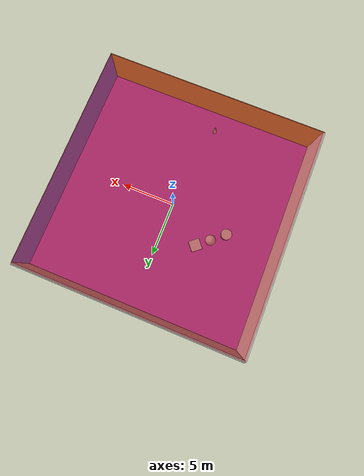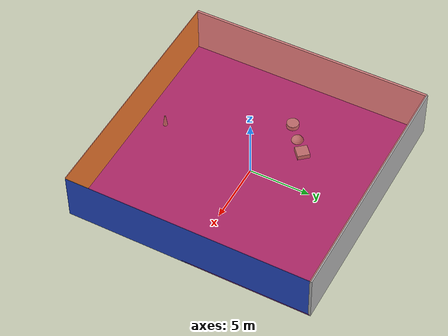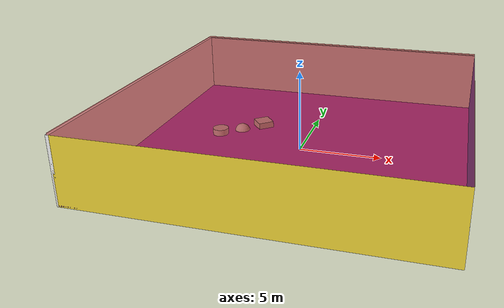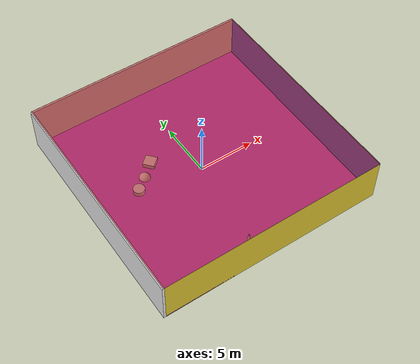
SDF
<sdf version="1.4">
 <world name="default">
  <physics type="ode">
   <max_step_size>0.001</max_step_size>
   <real_time_factor>1</real_time_factor>
   <real_time_update_rate>1000</real_time_update_rate>
   <gravity>0 0 -9.8</gravity>
  </physics>
  <scene><ambient>0.4 0.4 0.4 1</ambient><background>0.7 0.7 0.7 1</background><shadows>1</shadows></scene>
  <model name="Surrounding">
   <static>1</static>
   <link name="Ceiling">
    <collision name="Ceiling_Collision"><geometry><box><size>20 20 0.1</size></box></geometry></collision>
    <visual name="Ceiling_Visual">
     <geometry><box><size>20 20 0.1</size></box></geometry>
     <material>
      <script><uri>file://media/materials/scripts/gazebo.material</uri><name>Gazebo/RedTransparent</name></script>
     </material>
    </visual>
    <pose>0 0 4.05 0 0 0</pose>
   </link>
   <link name="Wall_South">
    <collision name="Wall_South_Collision">
     <geometry><box><size>20 0 4</size></box></geometry>
     <pose>0 0 2 0 -0 0</pose>
    </collision>
    <visual name="Wall_South_Visual">
     <pose>0 0 2 0 -0 0</pose>
     <geometry><box><size>20 0 4</size></box></geometry>
     <material>
      <script><uri>file://media/materials/scripts/gazebo.material</uri><name>Gazebo/ZincYellow</name></script>
     </material>
    </visual>
    <velocity_decay><linear>0</linear><angular>0</angular></velocity_decay>
    <pose>0 -10 0 0 -0 0</pose>
   </link>
   <link name="Wall_East">
    <collision name="Wall_21_Collision">
     <geometry><box><size>20 0 4</size></box></geometry>
     <pose>0 0 2 0 -0 0</pose>
    </collision>
    <visual name="Wall_21_Visual">
     <pose>0 0 2 0 -0 0</pose>
     <geometry><box><size>20 0 4</size></box></geometry>
     <material>
      <script><uri>file://media/materials/scripts/gazebo.material</uri><name>Gazebo/BlueLaser</name></script>
     </material>
    </visual>
    <velocity_decay><linear>0</linear><angular>0</angular></velocity_decay>
    <pose>10 0 0 0 -0 1.5708</pose>
   </link>
   <link name="Wall_North">
    <collision name="Wall_22_Collision">
     <geometry><box><size>20 0.2 4</size></box></geometry>
     <pose>0 0 2 0 -0 0</pose>
    </collision>
    <visual name="Wall_22_Visual">
     <pose>0 0 2 0 -0 0</pose>
     <geometry><box><size>20 0.2 4</size></box></geometry>
     <material>
      <script><uri>file://media/materials/scripts/gazebo.material</uri><name>Gazebo/PioneerBody</name></script>
     </material>
    </visual>
    <velocity_decay><linear>0</linear><angular>0</angular></velocity_decay>
    <pose>0 10 0 0 -0 0</pose>
   </link>
   <link name="Wall_West">
    <collision name="Wall_23_Collision">
     <geometry><box><size>20 0.2 4</size></box></geometry>
     <pose>0 0 2 0 -0 0</pose>
    </collision>
    <visual name="Wall_23_Visual">
     <pose>0 0 2 0 -0 0</pose>
     <geometry><box><size>20 0.2 4</size></box></geometry>
     <material>
      <script><uri>file://media/materials/scripts/gazebo.material</uri><name>Gazebo/White</name></script>
     </material>
    </visual>
    <velocity_decay><linear>0</linear><angular>0</angular></velocity_decay>
    <pose>-10 0 0 0 0 -1.5708</pose>
   </link>
   <link name="Ground_link">
    <collision name="collision">
     <pose>0 0 .05 0 -0 0</pose>
     <geometry><box><size>20 20 0.1</size></box></geometry>
    </collision>
    <visual name="visual">
     <pose>0 0 .05 0 -0 0</pose>
     <geometry><box><size>20 20 0.1</size></box></geometry>
     <material>
      <script><uri>file://media/materials/scripts/gazebo.material</uri><name>Gazebo/PurpleGlow</name></script>
     </material>
    </visual>
   </link>
   <static>1</static>
  </model>
  <spherical_coordinates>
   <surface_model>EARTH_WGS84</surface_model>
   <latitude_deg>0</latitude_deg>
   <longitude_deg>0</longitude_deg>
   <elevation>0</elevation>
   <heading_deg>0</heading_deg>
  </spherical_coordinates>
  <light name="lightball_0" type="diffuse">
   <diffuse>0.8 0.8 0.8 1</diffuse>
   <specular>0.2 0.2 0.2 1</specular>
   <attenuation>
    <range>100</range>
    <constant>0.7</constant>
    <linear>0.01</linear>
    <quadratic>0.001</quadratic>
   </attenuation>
   <direction>-0.5 0.1 -0.9</direction>
   <pose>-3.85626681056 -5.74835518875 1.68464745609 0 0 0</pose>
  </light>
  <light name="lightball_1" type="diffuse">
   <diffuse>0.8 0.8 0.8 1</diffuse>
   <specular>0.2 0.2 0.2 1</specular>
   <attenuation>
    <range>100</range>
    <constant>0.7</constant>
    <linear>0.01</linear>
    <quadratic>0.001</quadratic>
   </attenuation>
   <direction>-0.5 0.1 -0.9</direction>
   <pose>-5.86244763612 7.50385940628 1.44998715668 0 0 0</pose>
  </light>
  <light name="lightball_2" type="diffuse">
   <diffuse>0.8 0.8 0.8 1</diffuse>
   <specular>0.2 0.2 0.2 1</specular>
   <attenuation>
    <range>100</range>
    <constant>0.7</constant>
    <linear>0.01</linear>
    <quadratic>0.001</quadratic>
   </attenuation>
   <direction>-0.5 0.1 -0.9</direction>
   <pose>6.91535594641 1.76230435809 2.21887736968 0 0 0</pose>
  </light>
  <light name="lightball_3" type="diffuse">
   <diffuse>0.8 0.8 0.8 1</diffuse>
   <specular>0.2 0.2 0.2 1</specular>
   <attenuation>
    <range>100</range>
    <constant>0.7</constant>
    <linear>0.01</linear>
    <quadratic>0.001</quadratic>
   </attenuation>
   <direction>-0.5 0.1 -0.9</direction>
   <pose>8.25771262725 -6.67585074876 3.33174923905 0 0 0</pose>
  </light>
  <light name="lightball_4" type="diffuse">
   <diffuse>0.8 0.8 0.8 1</diffuse>
   <specular>0.2 0.2 0.2 1</specular>
   <attenuation>
    <range>100</range>
    <constant>0.7</constant>
    <linear>0.01</linear>
    <quadratic>0.001</quadratic>
   </attenuation>
   <direction>-0.5 0.1 -0.9</direction>
   <pose>3.6914254508 9.16314163063 2.83216495592 0 0 0</pose>
  </light>
  <light name="lightball_5" type="diffuse">
   <diffuse>0.8 0.8 0.8 1</diffuse>
   <specular>0.2 0.2 0.2 1</specular>
   <attenuation>
    <range>100</range>
    <constant>0.7</constant>
    <linear>0.01</linear>
    <quadratic>0.001</quadratic>
   </attenuation>
   <direction>-0.5 0.1 -0.9</direction>
   <pose>-2.31381911398 -5.17916996294 2.63465976142 0 0 0</pose>
  </light>
  <light name="lightball_6" type="diffuse">
   <diffuse>0.8 0.8 0.8 1</diffuse>
   <specular>0.2 0.2 0.2 1</specular>
   <attenuation>
    <range>100</range>
    <constant>0.7</constant>
    <linear>0.01</linear>
    <quadratic>0.001</quadratic>
   </attenuation>
   <direction>-0.5 0.1 -0.9</direction>
   <pose>-5.09167494919 8.36532072686 2.99517555156 0 0 0</pose>
  </light>
  <light name="lightball_7" type="diffuse">
   <diffuse>0.8 0.8 0.8 1</diffuse>
   <specular>0.2 0.2 0.2 1</specular>
   <attenuation>
    <range>100</range>
    <constant>0.7</constant>
    <linear>0.01</linear>
    <quadratic>0.001</quadratic>
   </attenuation>
   <direction>-0.5 0.1 -0.9</direction>
   <pose>3.71724948062 6.17798060875 2.21434956917 0 0 0</pose>
  </light>
  <light name="lightball_8" type="diffuse">
   <diffuse>0.8 0.8 0.8 1</diffuse>
   <specular>0.2 0.2 0.2 1</specular>
   <attenuation>
    <range>100</range>
    <constant>0.7</constant>
    <linear>0.01</linear>
    <quadratic>0.001</quadratic>
   </attenuation>
   <direction>-0.5 0.1 -0.9</direction>
   <pose>-1.9931789307 -7.19045158853 3.08784510805 0 0 0</pose>
  </light>
  <light name="lightball_9" type="diffuse">
   <diffuse>0.8 0.8 0.8 1</diffuse>
   <specular>0.2 0.2 0.2 1</specular>
   <attenuation>
    <range>100</range>
    <constant>0.7</constant>
    <linear>0.01</linear>
    <quadratic>0.001</quadratic>
   </attenuation>
   <direction>-0.5 0.1 -0.9</direction>
   <pose>-2.83975875016 5.64161357928 1.89335252623 0 0 0</pose>
  </light>
  <light name="lightball_10" type="diffuse">
   <diffuse>0.8 0.8 0.8 1</diffuse>
   <specular>0.2 0.2 0.2 1</specular>
   <attenuation>
    <range>100</range>
    <constant>0.7</constant>
    <linear>0.01</linear>
    <quadratic>0.001</quadratic>
   </attenuation>
   <direction>-0.5 0.1 -0.9</direction>
   <pose>-0.0336551003458 5.29105157222 3.20915889231 0 0 0</pose>
  </light>
  <light name="lightball_11" type="diffuse">
   <diffuse>0.8 0.8 0.8 1</diffuse>
   <specular>0.2 0.2 0.2 1</specular>
   <attenuation>
    <range>100</range>
    <constant>0.7</constant>
    <linear>0.01</linear>
    <quadratic>0.001</quadratic>
   </attenuation>
   <direction>-0.5 0.1 -0.9</direction>
   <pose>7.21487600403 -4.00026446869 0.583849097576 0 0 0</pose>
  </light>
  <light name="lightball_12" type="diffuse">
   <diffuse>0.8 0.8 0.8 1</diffuse>
   <specular>0.2 0.2 0.2 1</specular>
   <attenuation>
    <range>100</range>
    <constant>0.7</constant>
    <linear>0.01</linear>
    <quadratic>0.001</quadratic>
   </attenuation>
   <direction>-0.5 0.1 -0.9</direction>
   <pose>-4.57124975082 1.74446398935 0.877489234561 0 0 0</pose>
  </light>
  <light name="lightball_13" type="diffuse">
   <diffuse>0.8 0.8 0.8 1</diffuse>
   <specular>0.2 0.2 0.2 1</specular>
   <attenuation>
    <range>100</range>
    <constant>0.7</constant>
    <linear>0.01</linear>
    <quadratic>0.001</quadratic>
   </attenuation>
   <direction>-0.5 0.1 -0.9</direction>
   <pose>0.391770504628 3.54542529358 2.97337977648 0 0 0</pose>
  </light>
  <include>
   <uri>model://textured_shapes</uri>
   <pose>-4.43416476902 1.81545748316 0 0 0 2.28231381767</pose>
  </include>
  <include>
   <uri>model://construction_cone</uri>
   <pose>-1.05800798492 -8.09618611186 0 0 0 1.85771842695</pose>
  </include>
 </world>
</sdf>

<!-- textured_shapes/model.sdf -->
<sdf version="1.6">
  <model name="textured_shapes">
    <pose>0 0 0.5 0 0 0</pose>
    <link name="box">
      <pose>0 -1.5 0 0 0 0</pose>
      <collision name="collision">
        <geometry>
          <box>
            <size>1 1 1</size>
          </box>
        </geometry>
      </collision>
      <visual name="visual">
        <geometry>
          <box>
            <size>1 1 1</size>
          </box>
        </geometry>
        <material>
          <script>
            <uri>model://../model_source/models/textured_shapes/materials/scripts</uri>
            <uri>model://../model_source/models/textured_shapes/materials/textures</uri>
            <name>TexturedShape/Squares</name>
          </script>
        </material>
      </visual>
    </link>
    <link name="sphere">
      <collision name="collision">
        <geometry>
          <sphere>
            <radius>0.5</radius>
          </sphere>
        </geometry>
      </collision>
      <visual name="visual">
        <geometry>
          <sphere>
            <radius>0.5</radius>
          </sphere>
        </geometry>
        <material>
          <script>
            <uri>model://../model_source/models/textured_shapes/materials/scripts</uri>
            <uri>model://../model_source/models/textured_shapes/materials/textures</uri>
            <name>TexturedShape/Squares</name>
          </script>
        </material>
      </visual>
    </link>
    <link name="cylinder">
      <pose>0 1.5 0 0 0 0</pose>
      <collision name="collision">
        <geometry>
          <cylinder>
            <radius>0.5</radius>
            <length>1</length>
          </cylinder>
        </geometry>
      </collision>
      <visual name="visual">
        <geometry>
          <cylinder>
            <radius>0.5</radius>
            <length>1</length>
          </cylinder>
        </geometry>
        <material>
          <script>
            <uri>model://../model_source/models/textured_shapes/materials/scripts</uri>
            <uri>model://../model_source/models/textured_shapes/materials/textures</uri>
            <name>TexturedShape/Squares</name>
          </script>
        </material>
      </visual>
    </link>
  </model>
</sdf>

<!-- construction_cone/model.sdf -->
<sdf version="1.5">
  <model name="Construction Cone">
    <link name="link">
      <collision name="collision">
        <geometry>
          <mesh>
            <scale>10 10 10</scale>
            <uri>file://isr-testbed/construction_cone/meshes/construction_cone.dae</uri>
          </mesh>
        </geometry>
      </collision>
      <visual name="visual">
        <geometry>
          <mesh>
            <scale>10 10 10</scale>
            <uri>file://isr-testbed/construction_cone/meshes/construction_cone.dae</uri>
          </mesh>
        </geometry>
      </visual>
    </link>
  </model>
</sdf>
